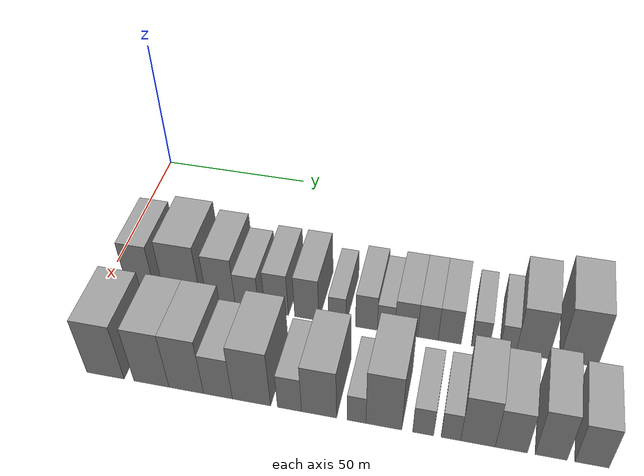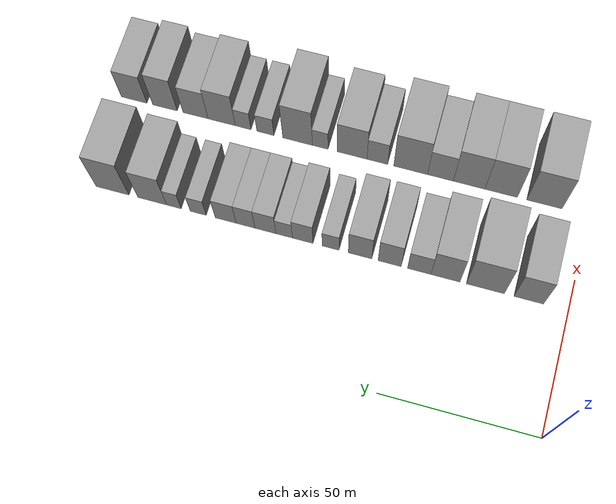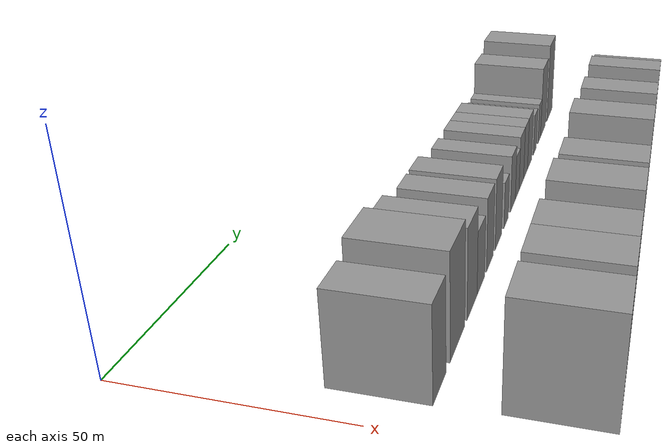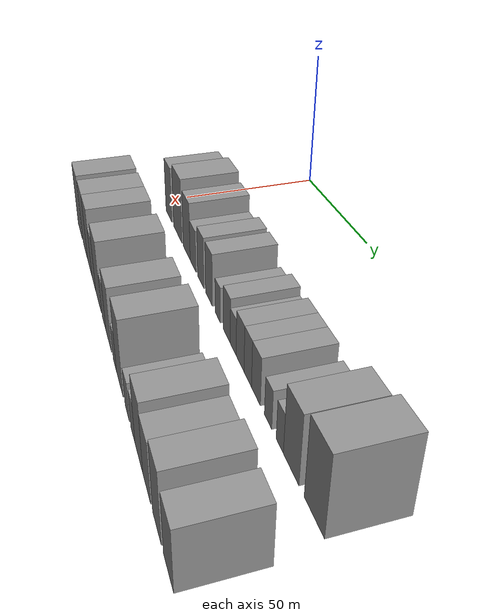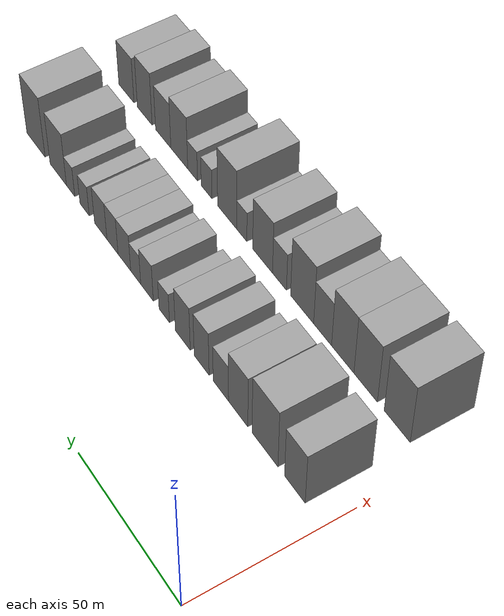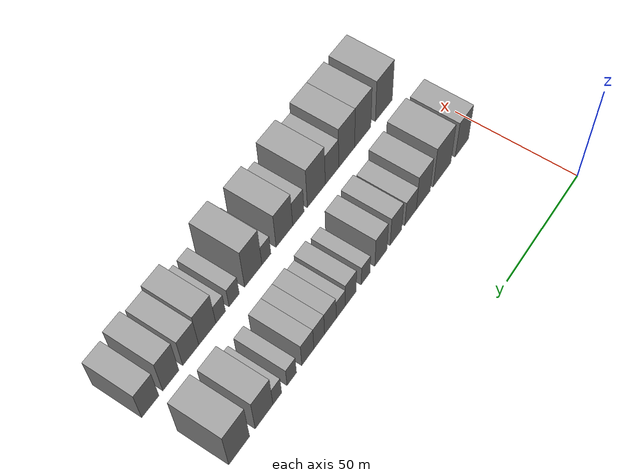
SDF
<sdf version="1.6">
 <world name="default">
  <model name="building_35">
   <static>1</static>
   <pose>50.0000 12.4085 0 0.000000 0.000000 0.000000</pose>
   <link name="link">
    <pose>0 0 10.50 0 0 0</pose>
    <collision name="collision"><geometry><box><size>20.0000 9.2569 21.0000</size></box></geometry></collision>
    <visual name="visual">
     <cast_shadows>0</cast_shadows>
     <geometry><box><size>20.0000 9.2569 21.0000</size></box></geometry>
     <material>
      <script>
       <uri>model://grey_wall/materials/scripts</uri>
       <uri>model://grey_wall/materials/textures</uri>
       <name>vrc/grey_wall</name>
      </script>
     </material>
    </visual>
   </link>
  </model>
  <model name="building_36">
   <static>1</static>
   <pose>50.0000 26.0304 0 0.000000 0.000000 0.000000</pose>
   <link name="link">
    <pose>0 0 12.00 0 0 0</pose>
    <collision name="collision"><geometry><box><size>20.0000 11.9869 24.0000</size></box></geometry></collision>
    <visual name="visual">
     <cast_shadows>0</cast_shadows>
     <geometry><box><size>20.0000 11.9869 24.0000</size></box></geometry>
     <material>
      <script>
       <uri>model://grey_wall/materials/scripts</uri>
       <uri>model://grey_wall/materials/textures</uri>
       <name>vrc/grey_wall</name>
      </script>
     </material>
    </visual>
   </link>
  </model>
  <model name="building_37">
   <static>1</static>
   <pose>50.0000 38.6332 0 0.000000 0.000000 0.000000</pose>
   <link name="link">
    <pose>0 0 10.50 0 0 0</pose>
    <collision name="collision"><geometry><box><size>20.0000 9.2187 21.0000</size></box></geometry></collision>
    <visual name="visual">
     <cast_shadows>0</cast_shadows>
     <geometry><box><size>20.0000 9.2187 21.0000</size></box></geometry>
     <material>
      <script>
       <uri>model://grey_wall/materials/scripts</uri>
       <uri>model://grey_wall/materials/textures</uri>
       <name>vrc/grey_wall</name>
      </script>
     </material>
    </visual>
   </link>
  </model>
  <model name="building_38">
   <static>1</static>
   <pose>50.0000 46.9688 0 0.000000 0.000000 0.000000</pose>
   <link name="link">
    <pose>0 0 7.50 0 0 0</pose>
    <collision name="collision"><geometry><box><size>20.0000 7.4526 15.0000</size></box></geometry></collision>
    <visual name="visual">
     <cast_shadows>0</cast_shadows>
     <geometry><box><size>20.0000 7.4526 15.0000</size></box></geometry>
     <material>
      <script>
       <uri>model://grey_wall/materials/scripts</uri>
       <uri>model://grey_wall/materials/textures</uri>
       <name>vrc/grey_wall</name>
      </script>
     </material>
    </visual>
   </link>
  </model>
  <model name="building_39">
   <static>1</static>
   <pose>50.0000 56.3891 0 0.000000 0.000000 0.000000</pose>
   <link name="link">
    <pose>0 0 9.00 0 0 0</pose>
    <collision name="collision"><geometry><box><size>20.0000 7.3880 18.0000</size></box></geometry></collision>
    <visual name="visual">
     <cast_shadows>0</cast_shadows>
     <geometry><box><size>20.0000 7.3880 18.0000</size></box></geometry>
     <material>
      <script>
       <uri>model://grey_wall/materials/scripts</uri>
       <uri>model://grey_wall/materials/textures</uri>
       <name>vrc/grey_wall</name>
      </script>
     </material>
    </visual>
   </link>
  </model>
  <model name="building_40">
   <static>1</static>
   <pose>50.0000 65.8690 0 0.000000 0.000000 0.000000</pose>
   <link name="link">
    <pose>0 0 9.00 0 0 0</pose>
    <collision name="collision"><geometry><box><size>20.0000 7.5716 18.0000</size></box></geometry></collision>
    <visual name="visual">
     <cast_shadows>0</cast_shadows>
     <geometry><box><size>20.0000 7.5716 18.0000</size></box></geometry>
     <material>
      <script>
       <uri>model://grey_wall/materials/scripts</uri>
       <uri>model://grey_wall/materials/textures</uri>
       <name>vrc/grey_wall</name>
      </script>
     </material>
    </visual>
   </link>
  </model>
  <model name="building_41">
   <static>1</static>
   <pose>50.0000 75.3594 0 0.000000 0.000000 0.000000</pose>
   <link name="link">
    <pose>0 0 6.00 0 0 0</pose>
    <collision name="collision"><geometry><box><size>20.0000 5.4093 12.0000</size></box></geometry></collision>
    <visual name="visual">
     <cast_shadows>0</cast_shadows>
     <geometry><box><size>20.0000 5.4093 12.0000</size></box></geometry>
     <material>
      <script>
       <uri>model://grey_wall/materials/scripts</uri>
       <uri>model://grey_wall/materials/textures</uri>
       <name>vrc/grey_wall</name>
      </script>
     </material>
    </visual>
   </link>
  </model>
  <model name="building_42">
   <static>1</static>
   <pose>50.0000 84.3849 0 0.000000 0.000000 0.000000</pose>
   <link name="link">
    <pose>0 0 7.50 0 0 0</pose>
    <collision name="collision"><geometry><box><size>20.0000 6.6418 15.0000</size></box></geometry></collision>
    <visual name="visual">
     <cast_shadows>0</cast_shadows>
     <geometry><box><size>20.0000 6.6418 15.0000</size></box></geometry>
     <material>
      <script>
       <uri>model://grey_wall/materials/scripts</uri>
       <uri>model://grey_wall/materials/textures</uri>
       <name>vrc/grey_wall</name>
      </script>
     </material>
    </visual>
   </link>
  </model>
  <model name="building_43">
   <static>1</static>
   <pose>50.0000 90.3973 0 0.000000 0.000000 0.000000</pose>
   <link name="link">
    <pose>0 0 6.00 0 0 0</pose>
    <collision name="collision"><geometry><box><size>20.0000 5.3829 12.0000</size></box></geometry></collision>
    <visual name="visual">
     <cast_shadows>0</cast_shadows>
     <geometry><box><size>20.0000 5.3829 12.0000</size></box></geometry>
     <material>
      <script>
       <uri>model://grey_wall/materials/scripts</uri>
       <uri>model://grey_wall/materials/textures</uri>
       <name>vrc/grey_wall</name>
      </script>
     </material>
    </visual>
   </link>
  </model>
  <model name="building_44">
   <static>1</static>
   <pose>50.0000 96.5161 0 0.000000 0.000000 0.000000</pose>
   <link name="link">
    <pose>0 0 7.50 0 0 0</pose>
    <collision name="collision"><geometry><box><size>20.0000 6.8548 15.0000</size></box></geometry></collision>
    <visual name="visual">
     <cast_shadows>0</cast_shadows>
     <geometry><box><size>20.0000 6.8548 15.0000</size></box></geometry>
     <material>
      <script>
       <uri>model://grey_wall/materials/scripts</uri>
       <uri>model://grey_wall/materials/textures</uri>
       <name>vrc/grey_wall</name>
      </script>
     </material>
    </visual>
   </link>
  </model>
  <model name="building_45">
   <static>1</static>
   <pose>50.0000 103.0263 0 0.000000 0.000000 0.000000</pose>
   <link name="link">
    <pose>0 0 7.50 0 0 0</pose>
    <collision name="collision"><geometry><box><size>20.0000 6.1654 15.0000</size></box></geometry></collision>
    <visual name="visual">
     <cast_shadows>0</cast_shadows>
     <geometry><box><size>20.0000 6.1654 15.0000</size></box></geometry>
     <material>
      <script>
       <uri>model://grey_wall/materials/scripts</uri>
       <uri>model://grey_wall/materials/textures</uri>
       <name>vrc/grey_wall</name>
      </script>
     </material>
    </visual>
   </link>
  </model>
  <model name="building_46">
   <static>1</static>
   <pose>50.0000 109.5577 0 0.000000 0.000000 0.000000</pose>
   <link name="link">
    <pose>0 0 7.50 0 0 0</pose>
    <collision name="collision"><geometry><box><size>20.0000 6.8975 15.0000</size></box></geometry></collision>
    <visual name="visual">
     <cast_shadows>0</cast_shadows>
     <geometry><box><size>20.0000 6.8975 15.0000</size></box></geometry>
     <material>
      <script>
       <uri>model://grey_wall/materials/scripts</uri>
       <uri>model://grey_wall/materials/textures</uri>
       <name>vrc/grey_wall</name>
      </script>
     </material>
    </visual>
   </link>
  </model>
  <model name="building_47">
   <static>1</static>
   <pose>50.0000 118.6466 0 0.000000 0.000000 0.000000</pose>
   <link name="link">
    <pose>0 0 6.00 0 0 0</pose>
    <collision name="collision"><geometry><box><size>20.0000 5.2803 12.0000</size></box></geometry></collision>
    <visual name="visual">
     <cast_shadows>0</cast_shadows>
     <geometry><box><size>20.0000 5.2803 12.0000</size></box></geometry>
     <material>
      <script>
       <uri>model://grey_wall/materials/scripts</uri>
       <uri>model://grey_wall/materials/textures</uri>
       <name>vrc/grey_wall</name>
      </script>
     </material>
    </visual>
   </link>
  </model>
  <model name="building_48">
   <static>1</static>
   <pose>50.0000 126.6877 0 0.000000 0.000000 0.000000</pose>
   <link name="link">
    <pose>0 0 6.00 0 0 0</pose>
    <collision name="collision"><geometry><box><size>20.0000 4.8019 12.0000</size></box></geometry></collision>
    <visual name="visual">
     <cast_shadows>0</cast_shadows>
     <geometry><box><size>20.0000 4.8019 12.0000</size></box></geometry>
     <material>
      <script>
       <uri>model://grey_wall/materials/scripts</uri>
       <uri>model://grey_wall/materials/textures</uri>
       <name>vrc/grey_wall</name>
      </script>
     </material>
    </visual>
   </link>
  </model>
  <model name="building_49">
   <static>1</static>
   <pose>50.0000 133.8981 0 0.000000 0.000000 0.000000</pose>
   <link name="link">
    <pose>0 0 10.50 0 0 0</pose>
    <collision name="collision"><geometry><box><size>20.0000 9.6188 21.0000</size></box></geometry></collision>
    <visual name="visual">
     <cast_shadows>0</cast_shadows>
     <geometry><box><size>20.0000 9.6188 21.0000</size></box></geometry>
     <material>
      <script>
       <uri>model://grey_wall/materials/scripts</uri>
       <uri>model://grey_wall/materials/textures</uri>
       <name>vrc/grey_wall</name>
      </script>
     </material>
    </visual>
   </link>
  </model>
  <model name="building_50">
   <static>1</static>
   <pose>50.0000 147.2006 0 0.000000 0.000000 0.000000</pose>
   <link name="link">
    <pose>0 0 12.00 0 0 0</pose>
    <collision name="collision"><geometry><box><size>20.0000 10.9862 24.0000</size></box></geometry></collision>
    <visual name="visual">
     <cast_shadows>0</cast_shadows>
     <geometry><box><size>20.0000 10.9862 24.0000</size></box></geometry>
     <material>
      <script>
       <uri>model://grey_wall/materials/scripts</uri>
       <uri>model://grey_wall/materials/textures</uri>
       <name>vrc/grey_wall</name>
      </script>
     </material>
    </visual>
   </link>
  </model>
  <model name="building_94">
   <static>1</static>
   <pose>82.0000 14.1284 0 0.000000 0.000000 0.000000</pose>
   <link name="link">
    <pose>0 0 12.00 0 0 0</pose>
    <collision name="collision"><geometry><box><size>20.0000 11.4049 24.0000</size></box></geometry></collision>
    <visual name="visual">
     <cast_shadows>0</cast_shadows>
     <geometry><box><size>20.0000 11.4049 24.0000</size></box></geometry>
     <material>
      <script>
       <uri>model://grey_wall/materials/scripts</uri>
       <uri>model://grey_wall/materials/textures</uri>
       <name>vrc/grey_wall</name>
      </script>
     </material>
    </visual>
   </link>
  </model>
  <model name="building_95">
   <static>1</static>
   <pose>82.0000 28.1155 0 0.000000 0.000000 0.000000</pose>
   <link name="link">
    <pose>0 0 12.00 0 0 0</pose>
    <collision name="collision"><geometry><box><size>20.0000 10.5695 24.0000</size></box></geometry></collision>
    <visual name="visual">
     <cast_shadows>0</cast_shadows>
     <geometry><box><size>20.0000 10.5695 24.0000</size></box></geometry>
     <material>
      <script>
       <uri>model://grey_wall/materials/scripts</uri>
       <uri>model://grey_wall/materials/textures</uri>
       <name>vrc/grey_wall</name>
      </script>
     </material>
    </visual>
   </link>
  </model>
  <model name="building_96">
   <static>1</static>
   <pose>82.0000 38.5590 0 0.000000 0.000000 0.000000</pose>
   <link name="link">
    <pose>0 0 12.00 0 0 0</pose>
    <collision name="collision"><geometry><box><size>20.0000 10.3175 24.0000</size></box></geometry></collision>
    <visual name="visual">
     <cast_shadows>0</cast_shadows>
     <geometry><box><size>20.0000 10.3175 24.0000</size></box></geometry>
     <material>
      <script>
       <uri>model://grey_wall/materials/scripts</uri>
       <uri>model://grey_wall/materials/textures</uri>
       <name>vrc/grey_wall</name>
      </script>
     </material>
    </visual>
   </link>
  </model>
  <model name="building_97">
   <static>1</static>
   <pose>82.0000 47.9423 0 0.000000 0.000000 0.000000</pose>
   <link name="link">
    <pose>0 0 9.00 0 0 0</pose>
    <collision name="collision"><geometry><box><size>20.0000 8.4489 18.0000</size></box></geometry></collision>
    <visual name="visual">
     <cast_shadows>0</cast_shadows>
     <geometry><box><size>20.0000 8.4489 18.0000</size></box></geometry>
     <material>
      <script>
       <uri>model://grey_wall/materials/scripts</uri>
       <uri>model://grey_wall/materials/textures</uri>
       <name>vrc/grey_wall</name>
      </script>
     </material>
    </visual>
   </link>
  </model>
  <model name="building_98">
   <static>1</static>
   <pose>82.0000 57.7339 0 0.000000 0.000000 0.000000</pose>
   <link name="link">
    <pose>0 0 12.00 0 0 0</pose>
    <collision name="collision"><geometry><box><size>20.0000 11.1344 24.0000</size></box></geometry></collision>
    <visual name="visual">
     <cast_shadows>0</cast_shadows>
     <geometry><box><size>20.0000 11.1344 24.0000</size></box></geometry>
     <material>
      <script>
       <uri>model://grey_wall/materials/scripts</uri>
       <uri>model://grey_wall/materials/textures</uri>
       <name>vrc/grey_wall</name>
      </script>
     </material>
    </visual>
   </link>
  </model>
  <model name="building_99">
   <static>1</static>
   <pose>82.0000 68.7336 0 0.000000 0.000000 0.000000</pose>
   <link name="link">
    <pose>0 0 7.50 0 0 0</pose>
    <collision name="collision"><geometry><box><size>20.0000 6.8648 15.0000</size></box></geometry></collision>
    <visual name="visual">
     <cast_shadows>0</cast_shadows>
     <geometry><box><size>20.0000 6.8648 15.0000</size></box></geometry>
     <material>
      <script>
       <uri>model://grey_wall/materials/scripts</uri>
       <uri>model://grey_wall/materials/textures</uri>
       <name>vrc/grey_wall</name>
      </script>
     </material>
    </visual>
   </link>
  </model>
  <model name="building_100">
   <static>1</static>
   <pose>82.0000 77.1396 0 0.000000 0.000000 0.000000</pose>
   <link name="link">
    <pose>0 0 10.50 0 0 0</pose>
    <collision name="collision"><geometry><box><size>20.0000 9.9472 21.0000</size></box></geometry></collision>
    <visual name="visual">
     <cast_shadows>0</cast_shadows>
     <geometry><box><size>20.0000 9.9472 21.0000</size></box></geometry>
     <material>
      <script>
       <uri>model://grey_wall/materials/scripts</uri>
       <uri>model://grey_wall/materials/textures</uri>
       <name>vrc/grey_wall</name>
      </script>
     </material>
    </visual>
   </link>
  </model>
  <model name="building_101">
   <static>1</static>
   <pose>82.0000 87.7354 0 0.000000 0.000000 0.000000</pose>
   <link name="link">
    <pose>0 0 6.00 0 0 0</pose>
    <collision name="collision"><geometry><box><size>20.0000 5.2445 12.0000</size></box></geometry></collision>
    <visual name="visual">
     <cast_shadows>0</cast_shadows>
     <geometry><box><size>20.0000 5.2445 12.0000</size></box></geometry>
     <material>
      <script>
       <uri>model://grey_wall/materials/scripts</uri>
       <uri>model://grey_wall/materials/textures</uri>
       <name>vrc/grey_wall</name>
      </script>
     </material>
    </visual>
   </link>
  </model>
  <model name="building_102">
   <static>1</static>
   <pose>82.0000 95.3330 0 0.000000 0.000000 0.000000</pose>
   <link name="link">
    <pose>0 0 12.00 0 0 0</pose>
    <collision name="collision"><geometry><box><size>20.0000 9.9505 24.0000</size></box></geometry></collision>
    <visual name="visual">
     <cast_shadows>0</cast_shadows>
     <geometry><box><size>20.0000 9.9505 24.0000</size></box></geometry>
     <material>
      <script>
       <uri>model://grey_wall/materials/scripts</uri>
       <uri>model://grey_wall/materials/textures</uri>
       <name>vrc/grey_wall</name>
      </script>
     </material>
    </visual>
   </link>
  </model>
  <model name="building_103">
   <static>1</static>
   <pose>82.0000 106.1833 0 0.000000 0.000000 0.000000</pose>
   <link name="link">
    <pose>0 0 6.00 0 0 0</pose>
    <collision name="collision"><geometry><box><size>20.0000 5.7502 12.0000</size></box></geometry></collision>
    <visual name="visual">
     <cast_shadows>0</cast_shadows>
     <geometry><box><size>20.0000 5.7502 12.0000</size></box></geometry>
     <material>
      <script>
       <uri>model://grey_wall/materials/scripts</uri>
       <uri>model://grey_wall/materials/textures</uri>
       <name>vrc/grey_wall</name>
      </script>
     </material>
    </visual>
   </link>
  </model>
  <model name="building_104">
   <static>1</static>
   <pose>82.0000 113.7118 0 0.000000 0.000000 0.000000</pose>
   <link name="link">
    <pose>0 0 6.00 0 0 0</pose>
    <collision name="collision"><geometry><box><size>20.0000 5.3068 12.0000</size></box></geometry></collision>
    <visual name="visual">
     <cast_shadows>0</cast_shadows>
     <geometry><box><size>20.0000 5.3068 12.0000</size></box></geometry>
     <material>
      <script>
       <uri>model://grey_wall/materials/scripts</uri>
       <uri>model://grey_wall/materials/textures</uri>
       <name>vrc/grey_wall</name>
      </script>
     </material>
    </visual>
   </link>
  </model>
  <model name="building_105">
   <static>1</static>
   <pose>82.0000 121.0133 0 0.000000 0.000000 0.000000</pose>
   <link name="link">
    <pose>0 0 10.50 0 0 0</pose>
    <collision name="collision"><geometry><box><size>20.0000 9.2962 21.0000</size></box></geometry></collision>
    <visual name="visual">
     <cast_shadows>0</cast_shadows>
     <geometry><box><size>20.0000 9.2962 21.0000</size></box></geometry>
     <material>
      <script>
       <uri>model://grey_wall/materials/scripts</uri>
       <uri>model://grey_wall/materials/textures</uri>
       <name>vrc/grey_wall</name>
      </script>
     </material>
    </visual>
   </link>
  </model>
  <model name="building_106">
   <static>1</static>
   <pose>82.0000 129.9487 0 0.000000 0.000000 0.000000</pose>
   <link name="link">
    <pose>0 0 9.00 0 0 0</pose>
    <collision name="collision"><geometry><box><size>20.0000 8.5746 18.0000</size></box></geometry></collision>
    <visual name="visual">
     <cast_shadows>0</cast_shadows>
     <geometry><box><size>20.0000 8.5746 18.0000</size></box></geometry>
     <material>
      <script>
       <uri>model://grey_wall/materials/scripts</uri>
       <uri>model://grey_wall/materials/textures</uri>
       <name>vrc/grey_wall</name>
      </script>
     </material>
    </visual>
   </link>
  </model>
  <model name="building_107">
   <static>1</static>
   <pose>82.0000 140.4479 0 0.000000 0.000000 0.000000</pose>
   <link name="link">
    <pose>0 0 10.50 0 0 0</pose>
    <collision name="collision"><geometry><box><size>20.0000 8.4239 21.0000</size></box></geometry></collision>
    <visual name="visual">
     <cast_shadows>0</cast_shadows>
     <geometry><box><size>20.0000 8.4239 21.0000</size></box></geometry>
     <material>
      <script>
       <uri>model://grey_wall/materials/scripts</uri>
       <uri>model://grey_wall/materials/textures</uri>
       <name>vrc/grey_wall</name>
      </script>
     </material>
    </visual>
   </link>
  </model>
  <model name="building_108">
   <static>1</static>
   <pose>82.0000 151.0749 0 0.000000 0.000000 0.000000</pose>
   <link name="link">
    <pose>0 0 9.00 0 0 0</pose>
    <collision name="collision"><geometry><box><size>20.0000 8.8301 18.0000</size></box></geometry></collision>
    <visual name="visual">
     <cast_shadows>0</cast_shadows>
     <geometry><box><size>20.0000 8.8301 18.0000</size></box></geometry>
     <material>
      <script>
       <uri>model://grey_wall/materials/scripts</uri>
       <uri>model://grey_wall/materials/textures</uri>
       <name>vrc/grey_wall</name>
      </script>
     </material>
    </visual>
   </link>
  </model>
 </world>
</sdf>
